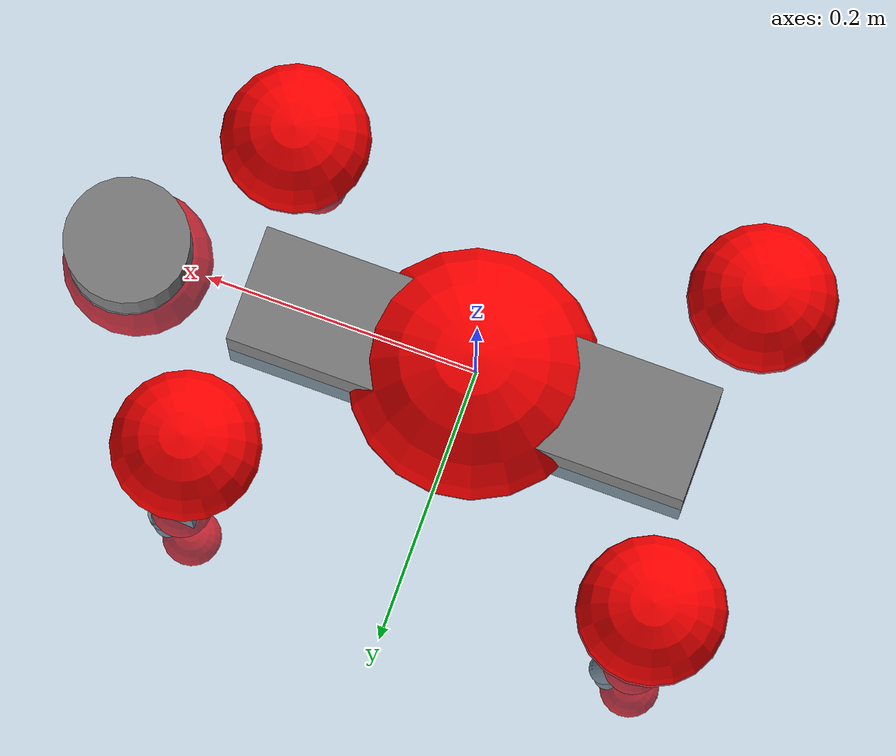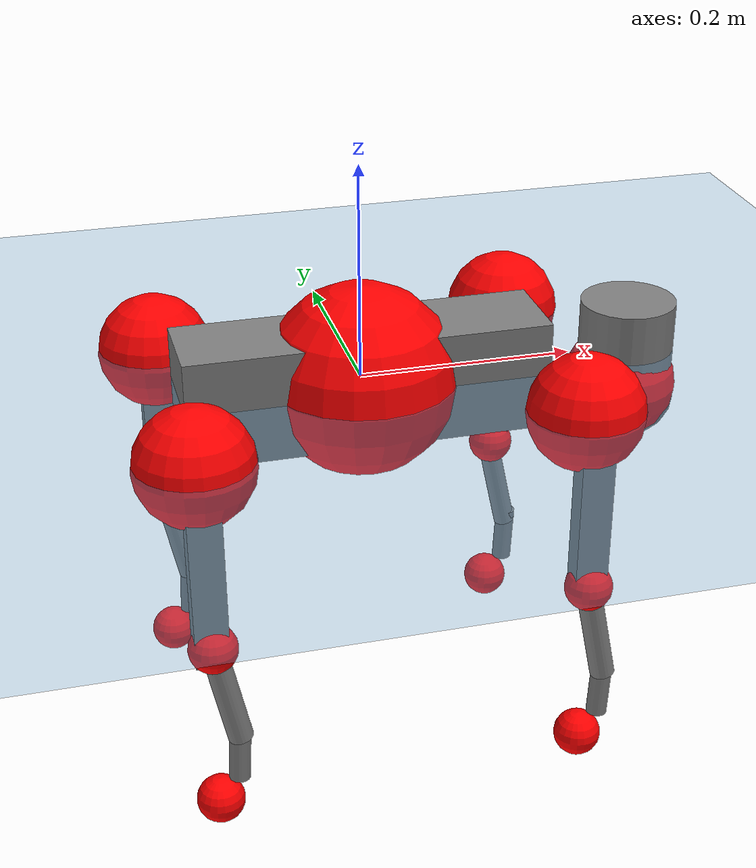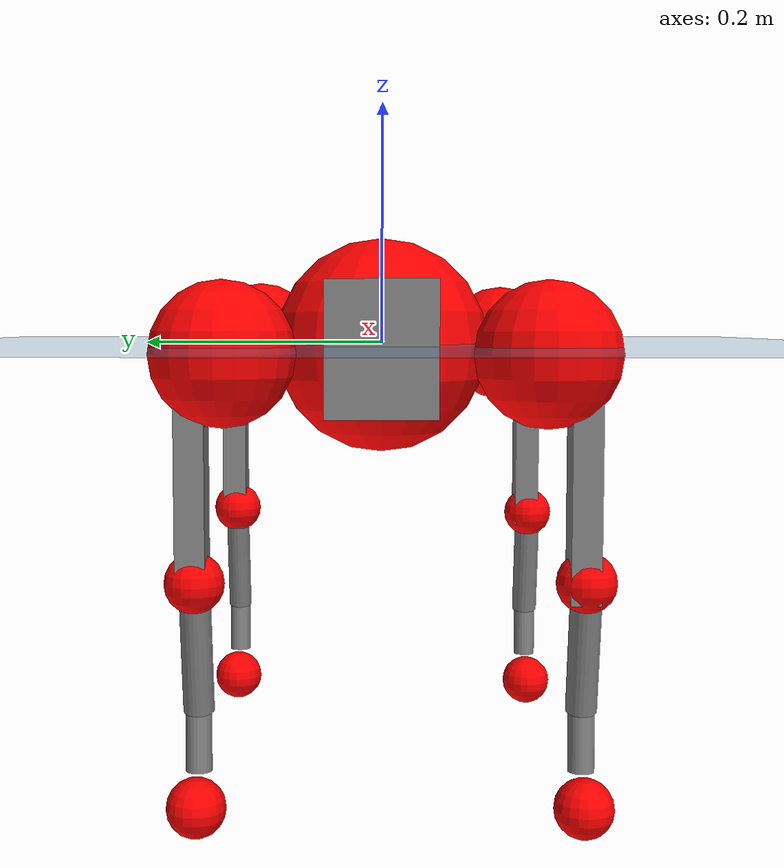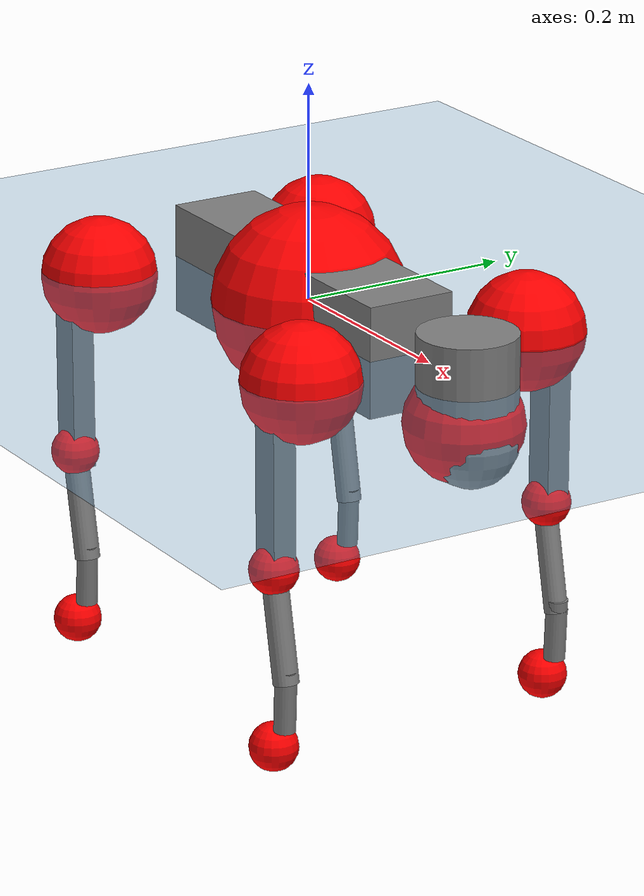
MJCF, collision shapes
<mujoco model="go2">
  <compiler angle="radian" assetdir="assets" balanceinertia="true" inertiafromgeom="false"/>

  <option timestep="0.005" density="1.2" viscosity="2e-05"/>

  <size nkey="1"/>

  <visual>
    <quality shadowsize="8192"/>
    <map shadowclip="0.5"/>
  </visual>

  <default>
    <default class="/">
      <geom contype="0" conaffinity="0" group="1" solref="-1000 -80"/>
      <site size="0.01 0.005 0.005" group="5"/>
      <general forcelimited="true" biastype="affine" gainprm="20" biasprm="0 -20 -0.5"/>
      <default class="go2">
        <joint armature="0.01" damping="0.01" frictionloss="0.2"/>
        <geom condim="1" margin="0.001"/>
        <default class="visual">
          <geom type="mesh" group="2"/>
        </default>
        <default class="collision">
          <geom group="3"/>
          <default class="foot">
            <geom size="0.022 0 0" condim="6" priority="1" friction="0.8 0.02 0.01" solimp="0.015 1 0.022"/>
          </default>
        </default>
        <default class="reward_collision_sphere">
          <geom group="5" rgba="1 0 0 1"/>
        </default>
      </default>
    </default>
  </default>

  <asset>
    <texture type="skybox" colorspace="auto" name="//unnamed_texture_0" builtin="gradient" rgb1="0.95 0.95 0.95" rgb2="0.95 0.95 0.95" width="100" height="600"/>
    <texture type="2d" colorspace="auto" name="texplane" builtin="checker" rgb1="0.345 0.575 0.748" rgb2="0.345 0.575 0.748" markrgb="1 1 1" width="512" height="512"/>
    <material name="MatPlane" class="/" texture="texplane" texuniform="true" texrepeat="2 2" specular="0.9"/>
    <material name="metal" class="/" rgba="0.9 0.95 0.95 1"/>
    <material name="black" class="/" rgba="0 0 0 1"/>
    <material name="white" class="/"/>
    <material name="gray" class="/" rgba="0.671705 0.692426 0.77427 1"/>
    <mesh name="base_0" class="/" file="base_0.obj"/>
    <mesh name="base_1" class="/" file="base_1.obj"/>
    <mesh name="base_2" class="/" file="base_2.obj"/>
    <mesh name="base_3" class="/" file="base_3.obj"/>
    <mesh name="base_4" class="/" file="base_4.obj"/>
    <mesh name="hip_0" class="/" file="hip_0.obj"/>
    <mesh name="hip_1" class="/" file="hip_1.obj"/>
    <mesh name="thigh_0" class="/" file="thigh_0.obj"/>
    <mesh name="thigh_1" class="/" file="thigh_1.obj"/>
    <mesh name="thigh_mirror_0" class="/" file="thigh_mirror_0.obj"/>
    <mesh name="thigh_mirror_1" class="/" file="thigh_mirror_1.obj"/>
    <mesh name="calf_0" class="/" file="calf_0.obj"/>
    <mesh name="calf_1" class="/" file="calf_1.obj"/>
    <mesh name="calf_mirror_0" class="/" file="calf_mirror_0.obj"/>
    <mesh name="calf_mirror_1" class="/" file="calf_mirror_1.obj"/>
    <mesh name="foot" class="/" file="foot.obj"/>
  </asset>

  <worldbody>
    <geom name="floor" class="/" size="100 100 0.125" type="plane" group="0" material="MatPlane"/>
    <light name="toplight_shadow" class="/" pos="0 0 5" dir="0.0990148 0.0990148 -0.990148" type="directional" ambient="0.04 0.04 0.04" diffuse="0.55 0.55 0.55" specular="0.12 0.12 0.12"/>
    <light name="toplight_fill" class="/" pos="0 0 5" dir="0.0990148 0.0990148 -0.990148" type="directional" castshadow="false" ambient="0.04 0.04 0.04" diffuse="0.3 0.3 0.3" specular="0.08 0.08 0.08"/>
    <body name="trunk" childclass="go2" pos="0.000815027 0.00102917 -0.00257565" quat="1 -0.000459265 -0.000662165 -3.94019e-06">
      <inertial pos="0.0177112 0.00263578 -0.00358625" quat="-0.000150671 0.713727 -0.00171993 0.700422" mass="5.09573" diaginertia="0.0667489 0.100559 0.00769434"/>
      <joint name="//unnamed_joint_0" type="free" armature="0" damping="0" frictionloss="0"/>
      <geom name="//unnamed_geom_1" class="visual" material="black" mesh="base_0"/>
      <geom name="//unnamed_geom_2" class="visual" material="black" mesh="base_1"/>
      <geom name="//unnamed_geom_3" class="visual" material="black" mesh="base_2"/>
      <geom name="//unnamed_geom_4" class="visual" material="white" mesh="base_3"/>
      <geom name="//unnamed_geom_5" class="visual" material="gray" mesh="base_4"/>
      <geom name="trunk_1" class="collision" size="0.168734 0.0419368 0.0511315" type="box"/>
      <geom name="trunk_2" class="collision" size="0.0448522 0.040367" pos="0.25791 0 0.00785878" type="cylinder"/>
      <geom name="trunk_3" class="collision" size="0.0421611" pos="0.265149 0 -0.0471527"/>
      <geom name="//unnamed_geom_9" class="reward_collision_sphere" size="0.0897044"/>
      <geom name="//unnamed_geom_10" class="reward_collision_sphere" size="0.0538226" pos="0.253385 0 -0.0353645"/>
      <site name="imu" pos="-0.0178919 0.0138905 0.0423856" size="0.00897044"/>
      <camera name="track" pos="0 -2.00061 0" quat="0.707107 0.707107 0 0" mode="trackcom"/>
      <camera name="ego_camera" pos="0.282343 0 0.0353645" quat="-0.5 -0.5 0.5 0.5"/>
      <body name="FL_hip" pos="0.172978 0.0466397 0.00318619" quat="0.999999 -0.000544515 -0.000777199 -0.000624171">
        <inertial pos="-0.00416688 -0.000526198 0.000545356" quat="0.494887 0.498578 0.504018 0.502467" mass="0.475878" diaginertia="0.000544102 0.000620086 0.000144312"/>
        <joint name="FL_hip_joint" pos="0 0 0" axis="0.999996 0.00093355 0.0026949" range="-1.02702 1.06859" armature="0.00898245" damping="0.0221185" frictionloss="0.181094"/>
        <geom name="//unnamed_geom_11" class="visual" material="metal" mesh="hip_0"/>
        <geom name="//unnamed_geom_12" class="visual" material="gray" mesh="hip_1"/>
        <geom name="//unnamed_geom_13" class="collision" size="0.041264 0.0179409" pos="0 0.0800246 0" quat="0.707107 0.707107 0 0" type="cylinder"/>
        <geom name="//unnamed_geom_14" class="reward_collision_sphere" size="0.0538226" pos="0 0.0700215 0"/>
        <body name="FL_thigh" pos="0.00150953 0.0959781 0.00307898" quat="0.999999 0.000513434 0.000569981 -0.000712398">
          <inertial pos="-0.00101609 -0.0249806 -0.0273834" quat="0.829569 0.0848386 -0.0200125 0.551559" mass="0.813357" diaginertia="0.00360456 0.00557987 0.000256328"/>
          <joint name="FL_thigh_joint" pos="0 0 0" axis="-0.000883582 0.999996 0.00270634" stiffness="0.00133231" range="-1.51624 3.50014" armature="0.00800485" damping="0.013562" frictionloss="0.162841"/>
          <geom name="//unnamed_geom_15" class="visual" material="metal" mesh="thigh_0"/>
          <geom name="//unnamed_geom_16" class="visual" material="gray" mesh="thigh_1"/>
          <geom name="//unnamed_geom_17" class="collision" size="0.0955352 0.0109888 0.0152497" pos="0 0 -0.083696" quat="0.707107 0 0.707107 0" type="box"/>
          <body name="FL_calf" pos="-0.000381522 -0.00177293 -0.168964" quat="0.999999 0.000621996 -0.000899881 0.000935428">
            <inertial pos="0.00335787 -0.00102473 -0.107827" quat="0.709591 -0.00902734 -0.00488405 0.704539" mass="0.173907" diaginertia="0.00087887 0.00152911 1.632e-05"/>
            <joint name="FL_calf_joint" pos="0 0 0" axis="-0.0118776 0.999765 0.0181172" stiffness="0.013783" range="-2.75637 -0.856854" armature="0.0100568" damping="0" frictionloss="0.204113"/>
            <geom name="//unnamed_geom_18" class="visual" material="gray" mesh="calf_0"/>
            <geom name="//unnamed_geom_19" class="visual" material="black" mesh="calf_1"/>
            <geom name="FL_calf0" class="collision" size="0.0107645 0.0538226" pos="0.00723957 0 -0.0471527" quat="0.994493 0 -0.104807 0" type="cylinder"/>
            <geom name="//unnamed_geom_21" class="collision" size="0.00986748 0.0291539" pos="0.0180989 0 -0.11631" quat="0.999688 0 0.0249974 0" type="cylinder"/>
            <geom name="//unnamed_geom_22" class="visual" pos="0 0 -0.167392" quat="1 0 0 0" material="black" mesh="foot"/>
            <geom name="FL_foot" class="foot" size="0.0168429" pos="-0.00180989 0 -0.167392"/>
            <geom name="//unnamed_geom_24" class="reward_collision_sphere" size="0.0224261"/>
            <geom name="//unnamed_geom_25" class="reward_collision_sphere" size="0.0224261" pos="-0.00180989 0 -0.167392"/>
            <site name="FL_foot" class="foot" pos="-0.00180989 0 -0.167392" size="0.00897044"/>
          </body>
        </body>
      </body>
      <body name="FR_hip" pos="0.175199 -0.045467 -0.00067152" quat="0.999999 0.000789822 -0.000498123 0.000664674">
        <inertial pos="-0.00191476 -0.0039226 -0.000325388" quat="0.493441 0.505547 0.494525 0.506343" mass="0.48682" diaginertia="0.000500634 0.000575855 0.000133923"/>
        <joint name="FR_hip_joint" pos="0 0 0" axis="0.99988 -0.0115327 0.0103" range="-1.01488 1.04488" armature="0.00948937" damping="0.00552984" frictionloss="0.159549"/>
        <geom name="//unnamed_geom_26" class="visual" pos="0 1.86802e-09 8.01232e-08" quat="4.63268e-05 1 0 0" material="metal" mesh="hip_0"/>
        <geom name="//unnamed_geom_27" class="visual" pos="0 3.02828e-09 -1.98175e-07" quat="4.63268e-05 1 0 0" material="gray" mesh="hip_1"/>
        <geom name="//unnamed_geom_28" class="collision" size="0.041264 0.0179409" pos="0 -0.0800246 0" quat="0.707107 0.707107 0 0" type="cylinder"/>
        <geom name="//unnamed_geom_29" class="reward_collision_sphere" size="0.0538226" pos="0 -0.0700215 0"/>
        <body name="FR_thigh" pos="0.000659386 -0.0963508 0.00300406" quat="1 0.000448493 -0.000291699 -0.000288422">
          <inertial pos="-0.000315132 0.0198188 -0.0246176" quat="0.552127 -0.0303804 0.0942626 0.827857" mass="0.832923" diaginertia="0.003538 0.00554605 0.000262168"/>
          <joint name="FR_thigh_joint" pos="0 0 0" axis="3.47493e-05 -1 -0.000892445" range="-3.47701 1.61752" armature="0.00908797" damping="0.00567129" frictionloss="0.201628"/>
          <geom name="//unnamed_geom_30" class="visual" material="metal" mesh="thigh_mirror_0"/>
          <geom name="//unnamed_geom_31" class="visual" material="gray" mesh="thigh_mirror_1"/>
          <geom name="//unnamed_geom_32" class="collision" size="0.0955352 0.0109888 0.0152497" pos="0 0 -0.083696" quat="0.707107 0 0.707107 0" type="box"/>
          <body name="FR_calf" pos="0.000789133 -0.0026077 -0.16911" quat="1 -5.67089e-05 -6.12112e-05 -0.000147332">
            <inertial pos="0.00527989 -0.000233118 -0.111231" quat="0.707637 -0.0119115 0.000228187 0.706476" mass="0.175743" diaginertia="0.000907051 0.00146499 1.53749e-05"/>
            <joint name="FR_calf_joint" pos="0 0 0" axis="-0.00782445 -0.999967 0.00206449" range="0.817278 2.77568" armature="0.00823842" damping="0.0233178" frictionloss="0.159475"/>
            <geom name="//unnamed_geom_33" class="visual" material="gray" mesh="calf_mirror_0"/>
            <geom name="//unnamed_geom_34" class="visual" material="black" mesh="calf_mirror_1"/>
            <geom name="FR_calf0" class="collision" size="0.0116616 0.0538226" pos="0.00904947 0 -0.0471527" quat="0.995004 0 -0.0998334 0" type="cylinder"/>
            <geom name="//unnamed_geom_36" class="collision" size="0.00986748 0.0291539" pos="0.0180989 0 -0.11631" quat="0.999688 0 0.0249974 0" type="cylinder"/>
            <geom name="//unnamed_geom_37" class="visual" pos="0 0 -0.167392" quat="1 0 0 0" material="black" mesh="foot"/>
            <geom name="FR_foot" class="foot" size="0.0200159" pos="-0.00180989 0 -0.167392"/>
            <geom name="//unnamed_geom_39" class="reward_collision_sphere" size="0.0224261"/>
            <geom name="//unnamed_geom_40" class="reward_collision_sphere" size="0.0224261" pos="-0.00180989 0 -0.167392"/>
            <site name="FR_foot" class="foot" pos="-0.00180989 0 -0.167392" size="0.00897044"/>
          </body>
        </body>
      </body>
      <body name="RL_hip" pos="-0.173508 0.0452228 -0.00288044" quat="1 -0.000397777 8.85207e-05 -0.000300057">
        <inertial pos="0.00669894 0.00347029 -0.00261065" quat="0.503605 0.498688 0.499178 0.498512" mass="0.500179" diaginertia="0.000531387 0.00060135 0.000147585"/>
        <joint name="RL_hip_joint" pos="0 0 0" axis="-0.999841 -0.0178448 -0.000443144" stiffness="0.0124189" range="-1.03321 0.988492" armature="0.00800686" damping="0" frictionloss="0.196784"/>
        <geom name="//unnamed_geom_41" class="visual" pos="-1.03728e-09 0 -2.0333e-07" quat="4.63268e-05 0 1 0" material="metal" mesh="hip_0"/>
        <geom name="//unnamed_geom_42" class="visual" pos="-1.68155e-09 0 -1.80325e-07" quat="4.63268e-05 0 1 0" material="gray" mesh="hip_1"/>
        <geom name="//unnamed_geom_43" class="collision" size="0.041264 0.0179409" pos="0 0.0800246 0" quat="0.707107 0.707107 0 0" type="cylinder"/>
        <geom name="//unnamed_geom_44" class="reward_collision_sphere" size="0.0538226" pos="0 0.0700215 0"/>
        <body name="RL_thigh" pos="0.000656971 0.0929107 0.00142534" quat="1 -6.06762e-05 -0.000225966 0.000275658">
          <inertial pos="-0.00340121 -0.0225387 -0.0258533" quat="0.828435 0.0911629 -0.0268086 0.551965" mass="0.855969" diaginertia="0.00362208 0.00590158 0.000276223"/>
          <joint name="RL_thigh_joint" pos="0 0 0" axis="0.0069509 0.999871 0.0144788" stiffness="0.0106626" range="-0.539591 4.53258" armature="0.0100775" damping="0" frictionloss="0.180742"/>
          <geom name="//unnamed_geom_45" class="visual" material="metal" mesh="thigh_0"/>
          <geom name="//unnamed_geom_46" class="visual" material="gray" mesh="thigh_1"/>
          <geom name="//unnamed_geom_47" class="collision" size="0.0955352 0.0109888 0.0152497" pos="0 0 -0.083696" quat="0.707107 0 0.707107 0" type="box"/>
          <body name="RL_calf" pos="0.000340151 -0.00132501 -0.168909" quat="1 -2.85593e-05 0.000184581 0.000197578">
            <inertial pos="0.00378114 0.000552868 -0.111976" quat="0.711738 0.00305726 -0.0180246 0.702207" mass="0.178174" diaginertia="0.000891298 0.00147912 1.60657e-05"/>
            <joint name="RL_calf_joint" pos="0 0 0" axis="0.00257912 0.999956 0.00900998" range="-2.71725 -0.786597" armature="0.010118" damping="0" frictionloss="0.190444"/>
            <geom name="//unnamed_geom_48" class="visual" material="gray" mesh="calf_0"/>
            <geom name="//unnamed_geom_49" class="visual" material="black" mesh="calf_1"/>
            <geom name="RL_calf0" class="collision" size="0.0116616 0.0538226" pos="0.00904947 0 -0.0471527" quat="0.995004 0 -0.0998334 0" type="cylinder"/>
            <geom name="//unnamed_geom_51" class="collision" size="0.00986748 0.0291539" pos="0.0180989 0 -0.11631" quat="0.999688 0 0.0249974 0" type="cylinder"/>
            <geom name="//unnamed_geom_52" class="visual" pos="0 0 -0.167392" quat="1 0 0 0" material="black" mesh="foot"/>
            <geom name="RL_foot" class="foot" size="0.0161813" pos="-0.00180989 0 -0.167392"/>
            <geom name="//unnamed_geom_54" class="reward_collision_sphere" size="0.0224261"/>
            <geom name="//unnamed_geom_55" class="reward_collision_sphere" size="0.0224261" pos="-0.00180989 0 -0.167392"/>
            <site name="RL_foot" class="foot" pos="-0.00180989 0 -0.167392" size="0.00897044"/>
          </body>
        </body>
      </body>
      <body name="RR_hip" pos="-0.172957 -0.0498388 -0.00353513" quat="1 1.75903e-05 -5.62186e-05 0.000442684">
        <inertial pos="0.00610503 0.000891208 -0.00157705" quat="0.504552 0.504115 0.496228 0.495028" mass="0.489674" diaginertia="0.000537917 0.000602648 0.000146137"/>
        <joint name="RR_hip_joint" pos="0 0 0" axis="-0.999985 0.00534004 -0.00077778" stiffness="0.0102621" range="-1.00491 1.0409" armature="0.00772843" damping="0.00289648" frictionloss="0.178526"/>
        <geom name="//unnamed_geom_56" class="visual" pos="1.04058e-09 1.86802e-09 -2.83453e-07" quat="2.14617e-09 4.63268e-05 4.63268e-05 -1" material="metal" mesh="hip_0"/>
        <geom name="//unnamed_geom_57" class="visual" pos="1.67338e-09 3.02828e-09 1.78505e-08" quat="2.14617e-09 4.63268e-05 4.63268e-05 -1" material="gray" mesh="hip_1"/>
        <geom name="//unnamed_geom_58" class="collision" size="0.041264 0.0179409" pos="0 -0.0800246 0" quat="0.707107 0.707107 0 0" type="cylinder"/>
        <geom name="//unnamed_geom_59" class="reward_collision_sphere" size="0.0538226" pos="0 -0.0700215 0"/>
        <body name="RR_thigh" pos="-4.14495e-05 -0.0967254 -0.000307123" quat="1 0.000125531 5.44006e-05 1.68346e-05">
          <inertial pos="-0.00256093 0.0228671 -0.0256242" quat="0.552315 -0.0187852 0.0842288 0.829157" mass="0.810851" diaginertia="0.00363506 0.00607196 0.000265362"/>
          <joint name="RR_thigh_joint" pos="0 0 0" axis="-8.80543e-05 -1 1.87479e-05" stiffness="0.00992185" range="-4.542 0.566415" armature="0.00943112" damping="0.0140876" frictionloss="0.179188"/>
          <geom name="//unnamed_geom_60" class="visual" material="metal" mesh="thigh_mirror_0"/>
          <geom name="//unnamed_geom_61" class="visual" material="gray" mesh="thigh_mirror_1"/>
          <geom name="//unnamed_geom_62" class="collision" size="0.0955352 0.0109888 0.0152497" pos="0 0 -0.083696" quat="0.707107 0 0.707107 0" type="box"/>
          <body name="RR_calf" pos="0.00174759 -0.00257018 -0.165359" quat="1 0.000302021 -0.000499725 -0.000136254">
            <inertial pos="0.00281368 -8.52687e-05 -0.111485" quat="0.706313 -0.017312 0.00489518 0.707671" mass="0.17616" diaginertia="0.000925766 0.00145796 1.63749e-05"/>
            <joint name="RR_calf_joint" pos="0 0 0" axis="-0.0130324 -0.999913 0.00180776" stiffness="0.0017723" range="0.810038 2.71324" armature="0.00846937" damping="0.0199287" frictionloss="0.169832"/>
            <geom name="//unnamed_geom_63" class="visual" material="gray" mesh="calf_mirror_0"/>
            <geom name="//unnamed_geom_64" class="visual" material="black" mesh="calf_mirror_1"/>
            <geom name="RR_calf0" class="collision" size="0.0116616 0.0538226" pos="0.00904947 0 -0.0471527" quat="0.995004 0 -0.0998334 0" type="cylinder"/>
            <geom name="//unnamed_geom_66" class="collision" size="0.00986748 0.0291539" pos="0.0180989 0 -0.11631" quat="0.999688 0 0.0249974 0" type="cylinder"/>
            <geom name="//unnamed_geom_67" class="visual" pos="0 0 -0.167392" quat="1 0 0 0" material="black" mesh="foot"/>
            <geom name="RR_foot" class="foot" size="0.0188911" pos="-0.00180989 0 -0.167392"/>
            <geom name="//unnamed_geom_69" class="reward_collision_sphere" size="0.0224261"/>
            <geom name="//unnamed_geom_70" class="reward_collision_sphere" size="0.0224261" pos="-0.00180989 0 -0.167392"/>
            <site name="RR_foot" class="foot" pos="-0.00180989 0 -0.167392" size="0.00897044"/>
          </body>
        </body>
      </body>
    </body>
  </worldbody>

  <contact>
    <pair class="/" geom1="floor" geom2="FL_foot" name="//unnamed_contact_0"/>
    <pair class="/" geom1="floor" geom2="FR_foot" name="//unnamed_contact_1"/>
    <pair class="/" geom1="floor" geom2="RL_foot" name="//unnamed_contact_2"/>
    <pair class="/" geom1="floor" geom2="RR_foot" name="//unnamed_contact_3"/>
  </contact>

  <actuator>
    <general name="FL_hip" class="/" joint="FL_hip_joint" forcerange="-21.4861 21.4861" gainprm="19.291" biasprm="0 -19.291 -0.420014"/>
    <general name="FL_thigh" class="/" joint="FL_thigh_joint" forcerange="-19.1366 19.1366" gainprm="19.291" biasprm="0 -19.291 -0.420014"/>
    <general name="FL_calf" class="/" joint="FL_calf_joint" forcerange="-41.6013 41.6013" gainprm="19.291" biasprm="0 -19.291 -0.420014"/>
    <general name="FR_hip" class="/" joint="FR_hip_joint" forcerange="-21.6356 21.6356" gainprm="19.291" biasprm="0 -19.291 -0.420014"/>
    <general name="FR_thigh" class="/" joint="FR_thigh_joint" forcerange="-23.3784 23.3784" gainprm="19.291" biasprm="0 -19.291 -0.420014"/>
    <general name="FR_calf" class="/" joint="FR_calf_joint" forcerange="-40.624 40.624" gainprm="19.291" biasprm="0 -19.291 -0.420014"/>
    <general name="RL_hip" class="/" joint="RL_hip_joint" forcerange="-22.2592 22.2592" gainprm="19.291" biasprm="0 -19.291 -0.420014"/>
    <general name="RL_thigh" class="/" joint="RL_thigh_joint" forcerange="-19.2575 19.2575" gainprm="19.291" biasprm="0 -19.291 -0.420014"/>
    <general name="RL_calf" class="/" joint="RL_calf_joint" forcerange="-38.4107 38.4107" gainprm="19.291" biasprm="0 -19.291 -0.420014"/>
    <general name="RR_hip" class="/" joint="RR_hip_joint" forcerange="-19.0683 19.0683" gainprm="19.291" biasprm="0 -19.291 -0.420014"/>
    <general name="RR_thigh" class="/" joint="RR_thigh_joint" forcerange="-22.5478 22.5478" gainprm="19.291" biasprm="0 -19.291 -0.420014"/>
    <general name="RR_calf" class="/" joint="RR_calf_joint" forcerange="-40.6915 40.6915" gainprm="19.291" biasprm="0 -19.291 -0.420014"/>
  </actuator>

  <sensor>
    <gyro site="imu" name="imu_angular_velocity"/>
    <velocimeter site="imu" name="imu_linear_velocity"/>
    <framelinvel objtype="site" objname="FL_foot" name="FL_foot_global_linear_velocity"/>
    <framelinvel objtype="site" objname="FR_foot" name="FR_foot_global_linear_velocity"/>
    <framelinvel objtype="site" objname="RL_foot" name="RL_foot_global_linear_velocity"/>
    <framelinvel objtype="site" objname="RR_foot" name="RR_foot_global_linear_velocity"/>
  </sensor>

  <keyframe>
    <key name="home" qpos="0 0 0.325 1 0 0 0 0.1 0.8 -1.5 -0.1 -0.8 1.5 -0.1 0.8 -1.5 0.1 -0.8 1.5"/>
  </keyframe>
</mujoco>
